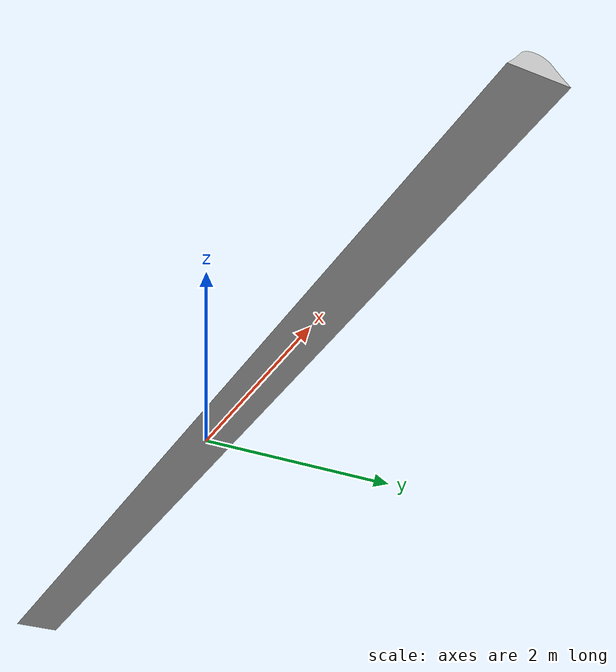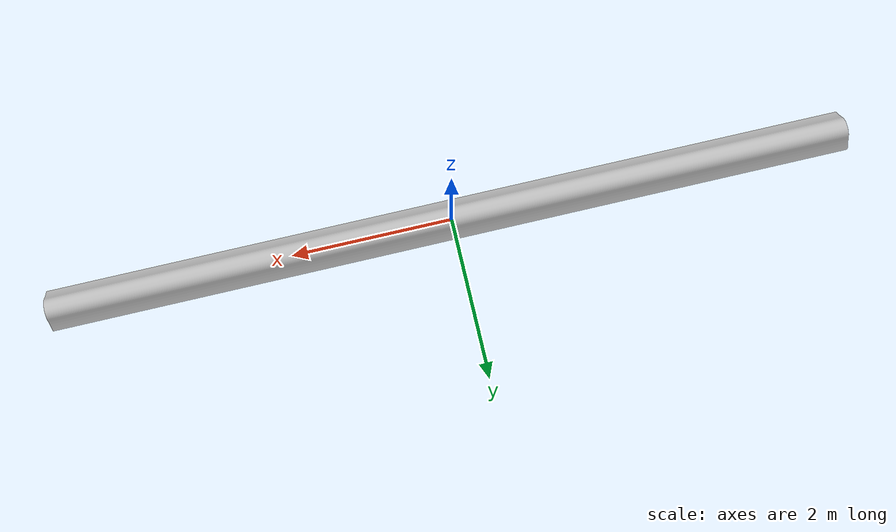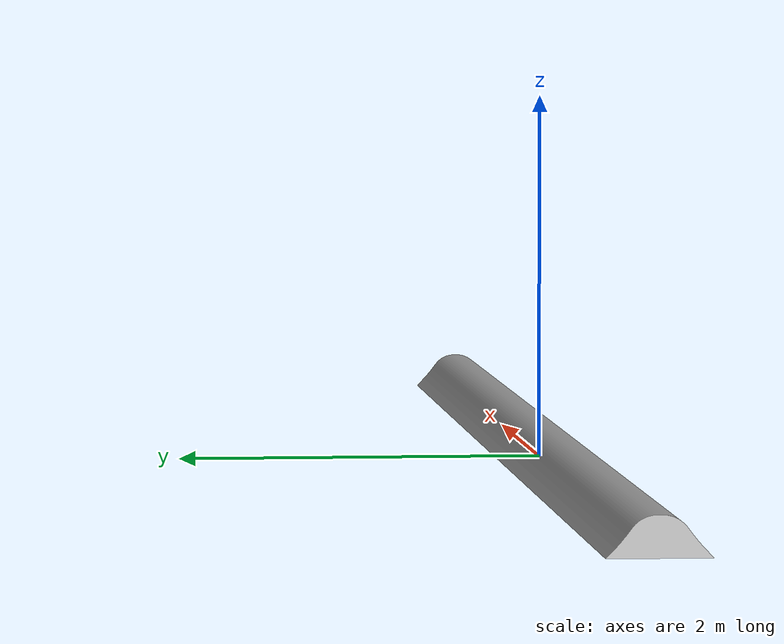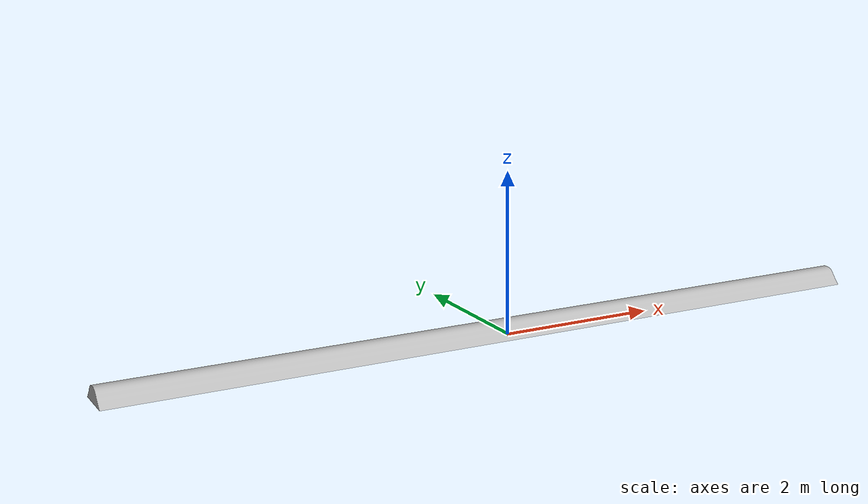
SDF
<?xml version="1.0" ?>
<sdf version="1.6">
  <model name="furrow">
    <static>true</static>
    <link name="link">
      <collision name="collision">
          <geometry>
              <mesh>
                  <uri>model://furrow/meshes/furrow.dae</uri>
                  <scale>10 1 1</scale>
              </mesh>
          </geometry>
      </collision>
      <visual name="visual">
          <geometry>
              <mesh>
                  <uri>model://furrow/meshes/furrow.dae</uri>
                  <scale>10 1 1</scale>
              </mesh>
          </geometry>
      </visual>
    </link>
  </model>
</sdf>
